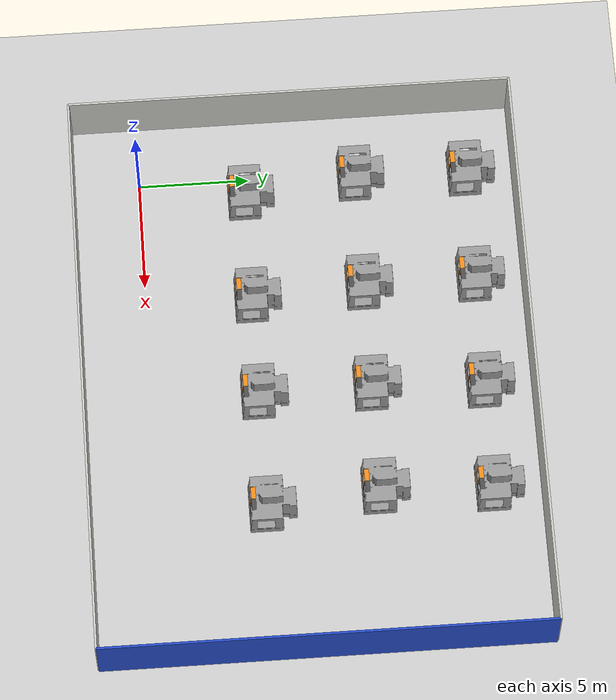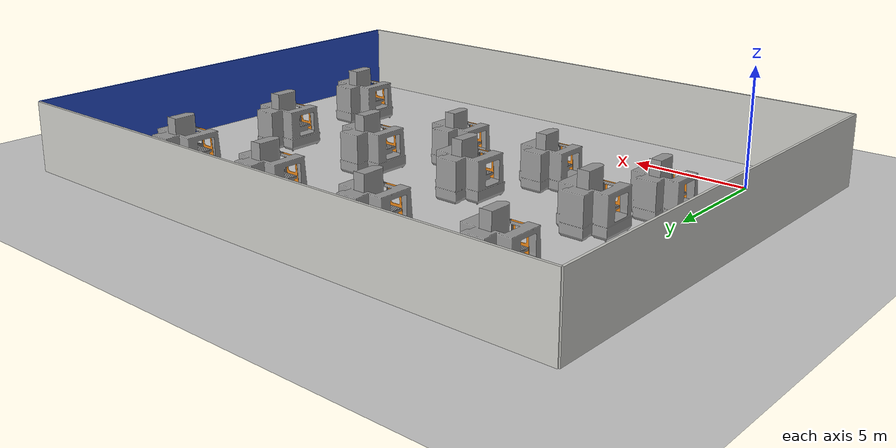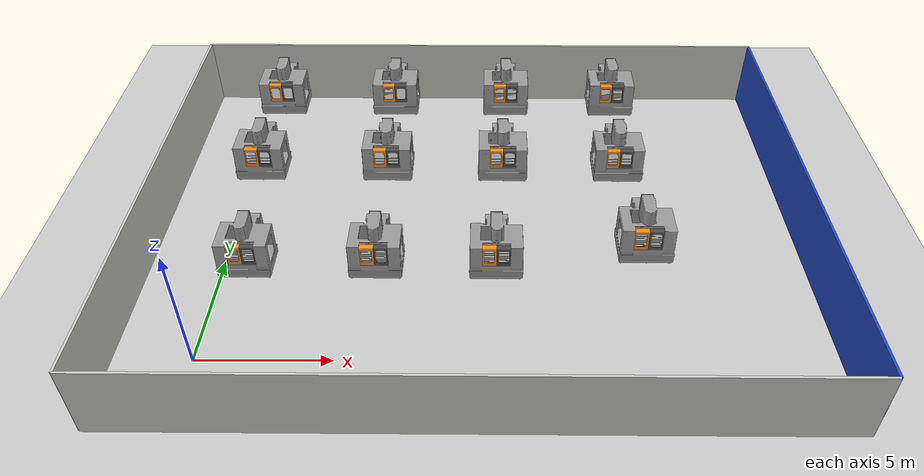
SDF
<sdf version="1.6">
 <world name="default">
  <light name="sun" type="directional">
   <pose>0 0 10 0 -0 0</pose>
   <diffuse>0.8 0.8 0.8 1</diffuse>
   <specular>0.2 0.2 0.2 1</specular>
   <attenuation>
    <range>1000</range>
    <constant>0.9</constant>
    <linear>0.01</linear>
    <quadratic>0.001</quadratic>
   </attenuation>
   <direction>-0.5 0.1 -0.9</direction>
  </light>
  <model name="ground_plane">
   <static>1</static>
   <link name="link">
    <collision name="collision">
     <geometry><plane><normal>0 0 1</normal><size>100 100</size></plane></geometry>
     <surface>
      <contact><collide_bitmask>65535</collide_bitmask></contact>
      <friction><ode><mu>100</mu><mu2>50</mu2></ode></friction>
     </surface>
    </collision>
    <visual name="visual">
     <cast_shadows>0</cast_shadows>
     <geometry><plane><normal>0 0 1</normal><size>100 100</size></plane></geometry>
     <material>
      <script><uri>file://media/materials/scripts/gazebo.material</uri><name>Gazebo/Grey</name></script>
     </material>
    </visual>
   </link>
  </model>
  <gravity>0 0 -9.8</gravity>
  <magnetic_field>6e-06 2.3e-05 -4.2e-05</magnetic_field>
  <atmosphere type="adiabatic"/>
  <physics name="default_physics" default="0" type="ode">
   <max_step_size>0.001</max_step_size>
   <real_time_factor>1</real_time_factor>
   <real_time_update_rate>1000</real_time_update_rate>
  </physics>
  <scene><ambient>0.4 0.4 0.5 1</ambient><background>0.7 0.5 0.7 1</background><shadows>1</shadows></scene>
  <spherical_coordinates>
   <surface_model>EARTH_WGS84</surface_model>
   <latitude_deg>0</latitude_deg>
   <longitude_deg>0</longitude_deg>
   <elevation>0</elevation>
   <heading_deg>0</heading_deg>
  </spherical_coordinates>
  <model name="InfiPlant">
   <include><uri>model://InfiPlant</uri></include>
   <pose>0.052968 0.040809 0 0 -0 0</pose>
  </model>
  <model name="HAAS_VF2_1_1"><include><uri>model://HAAS_VF2</uri></include><pose>1 4 0.1 0 0 0</pose></model>
  <model name="HAAS_VF2_1_2"><include><uri>model://HAAS_VF2</uri></include><pose>6.1 4 0.1 0 0 0</pose></model>
  <model name="HAAS_VF2_1_3"><include><uri>model://HAAS_VF2</uri></include><pose>10.8 4 0.1 0 0 0</pose></model>
  <model name="HAAS_VF2_1_4"><include><uri>model://HAAS_VF2</uri></include><pose>16.5 4 1 0 0 0</pose></model>
  <model name="HAAS_VF2_2_1"><include><uri>model://HAAS_VF2</uri></include><pose>0.8 9 1 0 0 0</pose></model>
  <model name="HAAS_VF2_2_2"><include><uri>model://HAAS_VF2</uri></include><pose>6.2 9 1 0 0 0</pose></model>
  <model name="HAAS_VF2_2_3"><include><uri>model://HAAS_VF2</uri></include><pose>11.1 9 1 0 0 0</pose></model>
  <model name="HAAS_VF2_2_4"><include><uri>model://HAAS_VF2</uri></include><pose>16 9 1 0 0 0</pose></model>
  <model name="HAAS_VF2_3_1"><include><uri>model://HAAS_VF2</uri></include><pose>.89 14 1 0 0 0</pose></model>
  <model name="HAAS_VF2_3_2"><include><uri>model://HAAS_VF2</uri></include><pose>6.15 14 1 0 0 0</pose></model>
  <model name="HAAS_VF2_3_3"><include><uri>model://HAAS_VF2</uri></include><pose>11.3 14 1 0 0 0</pose></model>
  <model name="HAAS_VF2_3_4"><include><uri>model://HAAS_VF2</uri></include><pose>16.21 14 1 0 0 0</pose></model>
 </world>
</sdf>

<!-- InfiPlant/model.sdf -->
<sdf version='1.6'>
    <model name='InfiPlant'>
        <pose frame=''>0 0 0 0 0 0</pose>
        <link name='wall_0'>
            <collision name='wall_0_collision'>
                <geometry>
                    <box>
                        <size>26 0.10 3</size>
                    </box>
                </geometry>
                <pose frame=''>0 0 0 0 -0 0</pose>
            </collision>
            <visual name='wall_0_visual'>
                <pose frame=''>0 0 0 0 -0 0</pose>
                <geometry>
                    <box>
                        <size>26 0.10 3</size>
                    </box>
                </geometry>
                <material>
                    <script>
                        <uri>file://media/materials/scripts/gazebo.material</uri>
                        <name>Gazebo/CeilingTiled</name>
                    </script>
                    <ambient>0.996078 0.47451 0.0196078 1</ambient>
                </material>
                <meta>
                    <layer>0</layer>
                </meta>
                <transparency>0.1</transparency>
            </visual>
            <pose frame=''>10 -3 1.5 0 0 0</pose>
        </link>

        <link name='wall_1'>
            <collision name='wall_1_collision'>
                <geometry>
                    <box>
                        <size>26 0.10 3</size>
                    </box>
                </geometry>
                <pose frame=''>0 0 0 0 -0 0</pose>
            </collision>
            <visual name='wall_1_visual'>
                <pose frame=''>0 0 0 0 -0 0</pose>
                <geometry>
                    <box>
                        <size>26 0.10 3</size>
                    </box>
                </geometry>
                <material>
                    <script>
                        <uri>file://media/materials/scripts/gazebo.material</uri>
                        <name>Gazebo/CeilingTiled</name>
                    </script>
                    <ambient>0.996078 0.47451 0.0196078 1</ambient>
                </material>
                <meta>
                    <layer>0</layer>
                </meta>
                <transparency>0.1</transparency>
            </visual>
            <pose frame=''>10 17 1.5 0 0 0</pose>
        </link>

        <link name='wall_2'>
            <collision name='wall_2_collision'>
                <geometry>
                    <box>
                        <size>20 0.10 3</size>
                    </box>
                </geometry>
                <pose frame=''>0 0 0 0 -0 0</pose>
            </collision>
            <visual name='wall_2_visual'>
                <pose frame=''>0 0 0 0 -0 0</pose>
                <geometry>
                    <box>
                        <size>20 0.10 3</size>
                    </box>
                </geometry>
                <material>
                    <script>
                        <uri>file://media/materials/scripts/gazebo.material</uri>
                        <name>Gazebo/CeilingTiled</name>
                    </script>
                    <ambient>0.996078 0.47451 0.0196078 1</ambient>
                </material>
                <meta>
                    <layer>0</layer>
                </meta>
                <transparency>0.1</transparency>
            </visual>
            <pose frame=''>-3 7 1.5 0 0 1.5707963267948966</pose>
        </link>

        <link name='wall_3'>
            <collision name='wall_3_collision'>
                <geometry>
                    <box>
                        <size>20 0.10 3</size>
                    </box>
                </geometry>
                <pose frame=''>0 0 0 0 -0 0</pose>
            </collision>
            <visual name='wall_3_visual'>
                <pose frame=''>0 0 0 0 -0 0</pose>
                <geometry>
                    <box>
                        <size>20 0.10 3</size>
                    </box>
                </geometry>
                <material>
                    <script>
                        <uri>file://media/materials/scripts/gazebo.material</uri>
                        <name> Gazebo/Blue </name>
                    </script>
                </material>
                <meta>
                    <layer>0</layer>
                </meta>
                <transparency>0.1</transparency>
            </visual>
            <pose frame=''>23 7 1.5 0 0 1.5707963267948966</pose>
        </link>
        <static>1</static>
    </model>
</sdf>

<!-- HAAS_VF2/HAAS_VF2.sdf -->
<sdf version='1.6'>
  <model name='HAAS_VF2'>
    <link name='HAAS_VF2_base'>
      <pose frame=''>0 0 0 1.57079632679 -0 0</pose>
      <inertial>
        <pose frame=''>0 0 -1 0 0.261799 0</pose>
        <mass>14879</mass>
        <inertia>
          <ixx>2964.3</ixx>
          <ixy>1.7344</ixy>
          <ixz>-27.292</ixz>
          <iyy>4409.9</iyy>
          <iyz>-1.747</iyz>
          <izz>3079.7</izz>
        </inertia>
      </inertial>
      <collision name='HAAS_VF2_base_collision'>
        <pose frame=''>-1.05 0 -2.1 0 -0 0</pose>
        <geometry>
          <mesh>
            <scale>.001 .001 .001</scale>
            <uri>model://HAAS_VF2/meshes/base_collision.STL</uri>
          </mesh>
        </geometry>
      </collision>
      <visual name='HAAS_VF2_base_visual'>
        <pose frame=''>0 0 0 0 -0 0</pose>
        <geometry>
          <mesh>
            <scale>.001 .001 .001</scale>
            <uri>model://HAAS_VF2/meshes/CNC_VF2_base.dae</uri>
          </mesh>
        </geometry>
        <material>
          <script>
            <uri>file://media/materials/scripts/gazebo.material</uri>
            <name>Gazebo/Grey</name>
          </script>
        </material>
      </visual>
    </link>
    <link name='Door_left'>
      <pose frame=''>0 0.033372 0.5001 1.5708 -0 0</pose>
      <inertial>
        <pose frame=''>-0.285 0.58552 -0.080585 0 -0 0</pose>
        <mass>5.2116</mass>
        <inertia>
          <ixx>0.80899</ixx>
          <ixy>0</ixy>
          <ixz>0</ixz>
          <iyy>0.20392</iyy>
          <iyz>0.12453</iyz>
          <izz>0.95521</izz>
        </inertia>
      </inertial>
      <collision name='Door_left_collision'>
        <pose frame=''>0 0 0 0 -0 0</pose>
        <geometry>
          <mesh>
            <scale>1 1 1</scale>
            <uri>model://HAAS_VF2/meshes/Door.dae</uri>
          </mesh>
        </geometry>
      </collision>
      <visual name='Door_left_visual'>
        <pose frame=''>0 0 0 0 -0 0</pose>
        <geometry>
          <mesh>
            <scale>1 1 1</scale>
            <uri>model://HAAS_VF2/meshes/Door.dae</uri>
          </mesh>
        </geometry>
        <material>
          <script>
            <uri>file://media/materials/scripts/gazebo.material</uri>
            <name>Gazebo/Orange</name>
          </script>
          <ambient>0.996078 0.47451 0.0196078 1</ambient>
        </material>
      </visual>
    </link>
    <joint name='door_left' type='prismatic'>
      <child>Door_left</child>
      <parent>HAAS_VF2_base</parent>
      <axis>
        <xyz>1 0 0</xyz>
        <limit>
          <lower>0</lower>
          <upper>0</upper>
          <effort>0</effort>
          <velocity>0</velocity>
        </limit>
        <dynamics>
          <spring_reference>0</spring_reference>
          <spring_stiffness>0</spring_stiffness>
        </dynamics>
        <use_parent_model_frame>1</use_parent_model_frame>
      </axis>
    </joint>
    <link name='Door_right'>
      <pose frame=''>.57 0.033372 0.5001 1.5708 -0 0</pose>
      <inertial>
        <pose frame=''>-0.285 0.58552 -0.080585 0 -0 0</pose>
        <mass>5.2116</mass>
        <inertia>
          <ixx>0.80899</ixx>
          <ixy>0</ixy>
          <ixz>0</ixz>
          <iyy>0.20392</iyy>
          <iyz>0.12453</iyz>
          <izz>0.95521</izz>
        </inertia>
      </inertial>
      <collision name='Door_right_collision'>
        <pose frame=''>0 0 0 0 -0 0</pose>
        <geometry>
          <mesh>
            <scale>1 1 1</scale>
            <uri>model://HAAS_VF2/meshes/Door.dae</uri>
            -->
          </mesh>
        </geometry>
      </collision>
      <visual name='Door_right_visual'>
        <pose frame=''>0 0 0 0 -0 0</pose>
        <geometry>
          <mesh>
            <scale>1 1 1</scale>
            <uri>model://HAAS_VF2/meshes/Door.dae</uri>
          </mesh>
        </geometry>
        <material>
          <script>
            <uri>file://media/materials/scripts/gazebo.material</uri>
            <name>Gazebo/DarkGrey</name>
          </script>
        </material>
      </visual>
    </link>
    <joint name='door_right' type='prismatic'>
      <child>Door_right</child>
      <parent>HAAS_VF2_base</parent>
      <axis>
        <xyz>1 0 0</xyz>
        <limit>
          <lower>0</lower>
          <upper>0</upper>
          <effort>0</effort>
          <velocity>0</velocity>
        </limit>
        <dynamics>
          <spring_reference>0</spring_reference>
          <spring_stiffness>0</spring_stiffness>
        </dynamics>
        <use_parent_model_frame>1</use_parent_model_frame>
      </axis>
    </joint>
  </model>
</sdf>
